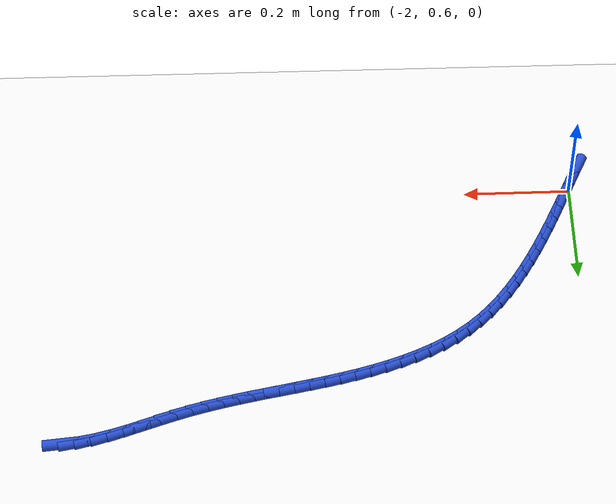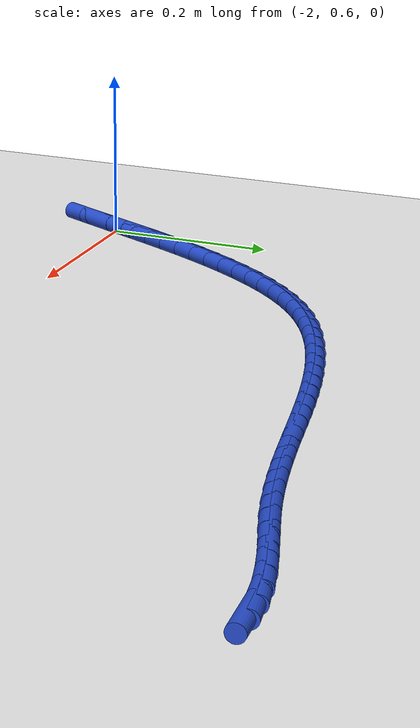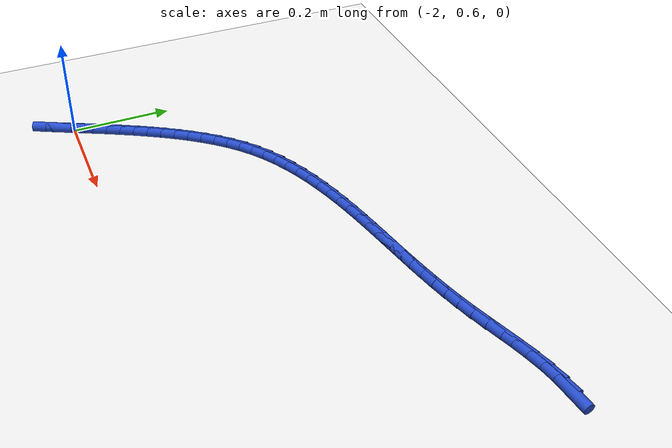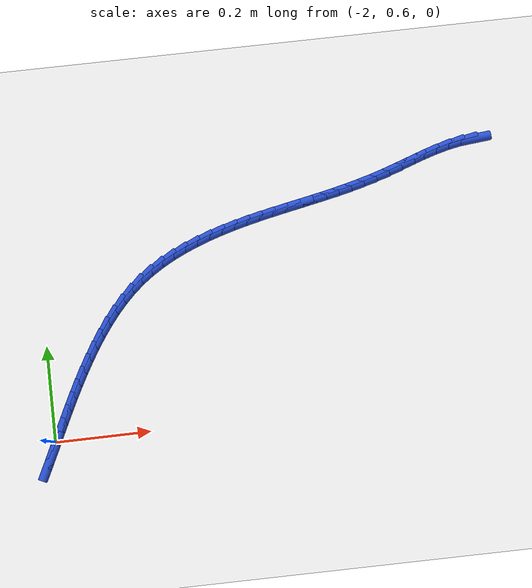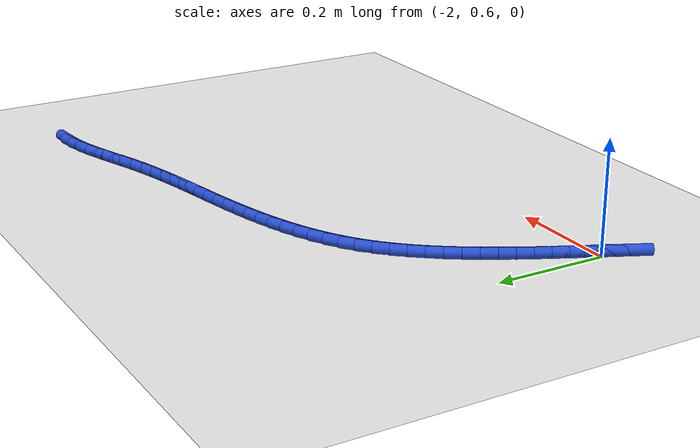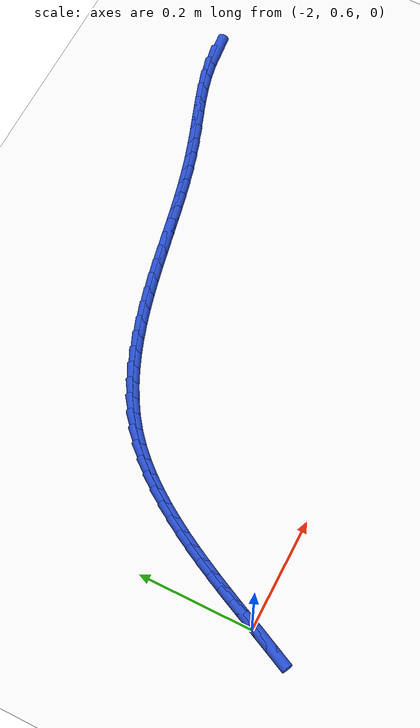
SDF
<sdf version="1.6">
 <world name="default">
  <model name="ground_plane">
   <static>1</static>
   <link name="link">
    <collision name="collision">
     <geometry><plane><normal>0 0 1</normal><size>100 100</size></plane></geometry>
     <surface><friction><ode><mu>100</mu><mu2>50</mu2></ode></friction></surface>
    </collision>
    <visual name="visual">
     <cast_shadows>0</cast_shadows>
     <geometry><plane><normal>0 0 1</normal><size>100 100</size></plane></geometry>
     <material>
      <script><uri>file://media/materials/scripts/gazebo.material</uri><name>Gazebo/WhiteGlow</name></script>
     </material>
    </visual>
   </link>
  </model>
  <model name="line">
   <link name="link_60">
    <pose>-1.060660429085584 1.1414969841542413 0.01 0 1.57 0.10037707467782653</pose>
    <collision name="collision">
     <geometry><cylinder><radius>0.01</radius><length>0.08</length></cylinder></geometry>
    </collision>
    <visual name="visual">
     <material>
      <script><name>Gazebo/Blue</name><uri>file://media/materials/scripts/gazebo.material</uri></script>
     </material>
     <geometry><cylinder><radius>0.01</radius><length>0.08</length></cylinder></geometry>
    </visual>
   </link>
   <link name="link_61">
    <pose>-1.0875630126536087 1.1387874754595328 0.01 0 1.57 0.19267171252004192</pose>
    <collision name="collision">
     <geometry><cylinder><radius>0.01</radius><length>0.08</length></cylinder></geometry>
    </collision>
    <visual name="visual">
     <material>
      <script><name>Gazebo/Blue</name><uri>file://media/materials/scripts/gazebo.material</uri></script>
     </material>
     <geometry><cylinder><radius>0.01</radius><length>0.08</length></cylinder></geometry>
    </visual>
   </link>
   <link name="link_62">
    <pose>-1.1149662834373986 1.1334413220532453 0.01 0 1.57 0.2597573451441378</pose>
    <collision name="collision">
     <geometry><cylinder><radius>0.01</radius><length>0.08</length></cylinder></geometry>
    </collision>
    <visual name="visual">
     <material>
      <script><name>Gazebo/Blue</name><uri>file://media/materials/scripts/gazebo.material</uri></script>
     </material>
     <geometry><cylinder><radius>0.01</radius><length>0.08</length></cylinder></geometry>
    </visual>
   </link>
   <link name="link_63">
    <pose>-1.1427620050209246 1.1260542829550129 0.01 0 1.57 0.3047391400324592</pose>
    <collision name="collision">
     <geometry><cylinder><radius>0.01</radius><length>0.08</length></cylinder></geometry>
    </collision>
    <visual name="visual">
     <material>
      <script><name>Gazebo/Blue</name><uri>file://media/materials/scripts/gazebo.material</uri></script>
     </material>
     <geometry><cylinder><radius>0.01</radius><length>0.08</length></cylinder></geometry>
    </visual>
   </link>
   <link name="link_64">
    <pose>-1.1708419409881587 1.117222117184471 0.01 0 1.57 0.33010072968656384</pose>
    <collision name="collision">
     <geometry><cylinder><radius>0.01</radius><length>0.08</length></cylinder></geometry>
    </collision>
    <visual name="visual">
     <material>
      <script><name>Gazebo/Blue</name><uri>file://media/materials/scripts/gazebo.material</uri></script>
     </material>
     <geometry><cylinder><radius>0.01</radius><length>0.08</length></cylinder></geometry>
    </visual>
   </link>
   <link name="link_65">
    <pose>-1.199097854923071 1.1075405837612529 0.01 0 1.57 0.3373623029033773</pose>
    <collision name="collision">
     <geometry><cylinder><radius>0.01</radius><length>0.08</length></cylinder></geometry>
    </collision>
    <visual name="visual">
     <material>
      <script><name>Gazebo/Blue</name><uri>file://media/materials/scripts/gazebo.material</uri></script>
     </material>
     <geometry><cylinder><radius>0.01</radius><length>0.08</length></cylinder></geometry>
    </visual>
   </link>
   <link name="link_66">
    <pose>-1.2274215104096335 1.0976054417049936 0.01 0 1.57 0.3270004151127906</pose>
    <collision name="collision">
     <geometry><cylinder><radius>0.01</radius><length>0.08</length></cylinder></geometry>
    </collision>
    <visual name="visual">
     <material>
      <script><name>Gazebo/Blue</name><uri>file://media/materials/scripts/gazebo.material</uri></script>
     </material>
     <geometry><cylinder><radius>0.01</radius><length>0.08</length></cylinder></geometry>
    </visual>
   </link>
   <link name="link_67">
    <pose>-1.2557046710318165 1.0880124500353276 0.01 0 1.57 0.3005778866389889</pose>
    <collision name="collision">
     <geometry><cylinder><radius>0.01</radius><length>0.08</length></cylinder></geometry>
    </collision>
    <visual name="visual">
     <material>
      <script><name>Gazebo/Blue</name><uri>file://media/materials/scripts/gazebo.material</uri></script>
     </material>
     <geometry><cylinder><radius>0.01</radius><length>0.08</length></cylinder></geometry>
    </visual>
   </link>
   <link name="link_68">
    <pose>-1.2838501892593501 1.0792881965038106 0.01 0 1.57 0.27201113206563127</pose>
    <collision name="collision">
     <geometry><cylinder><radius>0.01</radius><length>0.08</length></cylinder></geometry>
    </collision>
    <visual name="visual">
     <material>
      <script><name>Gazebo/Blue</name><uri>file://media/materials/scripts/gazebo.material</uri></script>
     </material>
     <geometry><cylinder><radius>0.01</radius><length>0.08</length></cylinder></geometry>
    </visual>
   </link>
   <link name="link_69">
    <pose>-1.3118374507641708 1.071481863037655 0.01 0 1.57 0.24769769130573802</pose>
    <collision name="collision">
     <geometry><cylinder><radius>0.01</radius><length>0.08</length></cylinder></geometry>
    </collision>
    <visual name="visual">
     <material>
      <script><name>Gazebo/Blue</name><uri>file://media/materials/scripts/gazebo.material</uri></script>
     </material>
     <geometry><cylinder><radius>0.01</radius><length>0.08</length></cylinder></geometry>
    </visual>
   </link>
   <link name="link_70">
    <pose>-1.339678131693805 1.0644412070754432 0.01 0 1.57 0.2279727099803743</pose>
    <collision name="collision">
     <geometry><cylinder><radius>0.01</radius><length>0.08</length></cylinder></geometry>
    </collision>
    <visual name="visual">
     <material>
      <script><name>Gazebo/Blue</name><uri>file://media/materials/scripts/gazebo.material</uri></script>
     </material>
     <geometry><cylinder><radius>0.01</radius><length>0.08</length></cylinder></geometry>
    </visual>
   </link>
   <link name="link_71">
    <pose>-1.3673840220418303 1.0580132758964162 0.01 0 1.57 0.21308696646675304</pose>
    <collision name="collision">
     <geometry><cylinder><radius>0.01</radius><length>0.08</length></cylinder></geometry>
    </collision>
    <visual name="visual">
     <material>
      <script><name>Gazebo/Blue</name><uri>file://media/materials/scripts/gazebo.material</uri></script>
     </material>
     <geometry><cylinder><radius>0.01</radius><length>0.08</length></cylinder></geometry>
    </visual>
   </link>
   <link name="link_72">
    <pose>-1.3949669118018269 1.0520451167798177 0.01 0 1.57 0.20323398639800752</pose>
    <collision name="collision">
     <geometry><cylinder><radius>0.01</radius><length>0.08</length></cylinder></geometry>
    </collision>
    <visual name="visual">
     <material>
      <script><name>Gazebo/Blue</name><uri>file://media/materials/scripts/gazebo.material</uri></script>
     </material>
     <geometry><cylinder><radius>0.01</radius><length>0.08</length></cylinder></geometry>
    </visual>
   </link>
   <link name="link_73">
    <pose>-1.4224385909673714 1.0463837770048878 0.01 0 1.57 0.19855527441415055</pose>
    <collision name="collision">
     <geometry><cylinder><radius>0.01</radius><length>0.08</length></cylinder></geometry>
    </collision>
    <visual name="visual">
     <material>
      <script><name>Gazebo/Blue</name><uri>file://media/materials/scripts/gazebo.material</uri></script>
     </material>
     <geometry><cylinder><radius>0.01</radius><length>0.08</length></cylinder></geometry>
    </visual>
   </link>
   <link name="link_74">
    <pose>-1.4498108495320434 1.0408763038508693 0.01 0 1.57 0.19914408789378646</pose>
    <collision name="collision">
     <geometry><cylinder><radius>0.01</radius><length>0.08</length></cylinder></geometry>
    </collision>
    <visual name="visual">
     <material>
      <script><name>Gazebo/Blue</name><uri>file://media/materials/scripts/gazebo.material</uri></script>
     </material>
     <geometry><cylinder><radius>0.01</radius><length>0.08</length></cylinder></geometry>
    </visual>
   </link>
   <link name="link_75">
    <pose>-1.4770954774894223 1.0353697445970038 0.01 0 1.57 0.20504667120053235</pose>
    <collision name="collision">
     <geometry><cylinder><radius>0.01</radius><length>0.08</length></cylinder></geometry>
    </collision>
    <visual name="visual">
     <material>
      <script><name>Gazebo/Blue</name><uri>file://media/materials/scripts/gazebo.material</uri></script>
     </material>
     <geometry><cylinder><radius>0.01</radius><length>0.08</length></cylinder></geometry>
    </visual>
   </link>
   <link name="link_76">
    <pose>-1.504304264833086 1.0297111465225335 0.01 0 1.57 0.21626030453882042</pose>
    <collision name="collision">
     <geometry><cylinder><radius>0.01</radius><length>0.08</length></cylinder></geometry>
    </collision>
    <visual name="visual">
     <material>
      <script><name>Gazebo/Blue</name><uri>file://media/materials/scripts/gazebo.material</uri></script>
     </material>
     <geometry><cylinder><radius>0.01</radius><length>0.08</length></cylinder></geometry>
    </visual>
   </link>
   <link name="link_77">
    <pose>-1.5314490015566122 1.0237475569066996 0.01 0 1.57 0.2327280087937068</pose>
    <collision name="collision">
     <geometry><cylinder><radius>0.01</radius><length>0.08</length></cylinder></geometry>
    </collision>
    <visual name="visual">
     <material>
      <script><name>Gazebo/Blue</name><uri>file://media/materials/scripts/gazebo.material</uri></script>
     </material>
     <geometry><cylinder><radius>0.01</radius><length>0.08</length></cylinder></geometry>
    </visual>
   </link>
   <link name="link_78">
    <pose>-1.5585414776535809 1.0173260230287444 0.01 0 1.57 0.2543302973593069</pose>
    <collision name="collision">
     <geometry><cylinder><radius>0.01</radius><length>0.08</length></cylinder></geometry>
    </collision>
    <visual name="visual">
     <material>
      <script><name>Gazebo/Blue</name><uri>file://media/materials/scripts/gazebo.material</uri></script>
     </material>
     <geometry><cylinder><radius>0.01</radius><length>0.08</length></cylinder></geometry>
    </visual>
   </link>
   <link name="link_79">
    <pose>-1.5855934831175695 1.0102935921679095 0.01 0 1.57 0.28087498554764667</pose>
    <collision name="collision">
     <geometry><cylinder><radius>0.01</radius><length>0.08</length></cylinder></geometry>
    </collision>
    <visual name="visual">
     <material>
      <script><name>Gazebo/Blue</name><uri>file://media/materials/scripts/gazebo.material</uri></script>
     </material>
     <geometry><cylinder><radius>0.01</radius><length>0.08</length></cylinder></geometry>
    </visual>
   </link>
   <link name="link_80">
    <pose>-1.6126168079421572 1.0024973116034372 0.01 0 1.57 0.3122426797753947</pose>
    <collision name="collision">
     <geometry><cylinder><radius>0.01</radius><length>0.08</length></cylinder></geometry>
    </collision>
    <visual name="visual">
     <material>
      <script><name>Gazebo/Blue</name><uri>file://media/materials/scripts/gazebo.material</uri></script>
     </material>
     <geometry><cylinder><radius>0.01</radius><length>0.08</length></cylinder></geometry>
    </visual>
   </link>
   <link name="link_81">
    <pose>-1.639595160303173 0.9937886431454803 0.01 0 1.57 0.34915072345688863</pose>
    <collision name="collision">
     <geometry><cylinder><radius>0.01</radius><length>0.08</length></cylinder></geometry>
    </collision>
    <visual name="visual">
     <material>
      <script><name>Gazebo/Blue</name><uri>file://media/materials/scripts/gazebo.material</uri></script>
     </material>
     <geometry><cylinder><radius>0.01</radius><length>0.08</length></cylinder></geometry>
    </visual>
   </link>
   <link name="link_82">
    <pose>-1.6663671695606455 0.9840418553513376 0.01 0 1.57 0.3922335474188446</pose>
    <collision name="collision">
     <geometry><cylinder><radius>0.01</radius><length>0.08</length></cylinder></geometry>
    </collision>
    <visual name="visual">
     <material>
      <script><name>Gazebo/Blue</name><uri>file://media/materials/scripts/gazebo.material</uri></script>
     </material>
     <geometry><cylinder><radius>0.01</radius><length>0.08</length></cylinder></geometry>
    </visual>
   </link>
   <link name="link_83">
    <pose>-1.6927247515836117 0.97313856025414 0.01 0 1.57 0.4419901675397512</pose>
    <collision name="collision">
     <geometry><cylinder><radius>0.01</radius><length>0.08</length></cylinder></geometry>
    </collision>
    <visual name="visual">
     <material>
      <script><name>Gazebo/Blue</name><uri>file://media/materials/scripts/gazebo.material</uri></script>
     </material>
     <geometry><cylinder><radius>0.01</radius><length>0.08</length></cylinder></geometry>
    </visual>
   </link>
   <link name="link_84">
    <pose>-1.7184597997865754 0.9609603734169256 0.01 0 1.57 0.4989517790778436</pose>
    <collision name="collision">
     <geometry><cylinder><radius>0.01</radius><length>0.08</length></cylinder></geometry>
    </collision>
    <visual name="visual">
     <material>
      <script><name>Gazebo/Blue</name><uri>file://media/materials/scripts/gazebo.material</uri></script>
     </material>
     <geometry><cylinder><radius>0.01</radius><length>0.08</length></cylinder></geometry>
    </visual>
   </link>
   <link name="link_85">
    <pose>-1.743364207584042 0.9473889104027328 0.01 0 1.57 0.563617972813412</pose>
    <collision name="collision">
     <geometry><cylinder><radius>0.01</radius><length>0.08</length></cylinder></geometry>
    </collision>
    <visual name="visual">
     <material>
      <script><name>Gazebo/Blue</name><uri>file://media/materials/scripts/gazebo.material</uri></script>
     </material>
     <geometry><cylinder><radius>0.01</radius><length>0.08</length></cylinder></geometry>
    </visual>
   </link>
   <link name="link_86">
    <pose>-1.7672298683905145 0.9323057867745993 0.01 0 1.57 0.6363607128908866</pose>
    <collision name="collision">
     <geometry><cylinder><radius>0.01</radius><length>0.08</length></cylinder></geometry>
    </collision>
    <visual name="visual">
     <material>
      <script><name>Gazebo/Blue</name><uri>file://media/materials/scripts/gazebo.material</uri></script>
     </material>
     <geometry><cylinder><radius>0.01</radius><length>0.08</length></cylinder></geometry>
    </visual>
   </link>
   <link name="link_87">
    <pose>-1.7898487197560158 0.9155926638061955 0.01 0 1.57 0.7138617305378235</pose>
    <collision name="collision">
     <geometry><cylinder><radius>0.01</radius><length>0.08</length></cylinder></geometry>
    </collision>
    <visual name="visual">
     <material>
      <script><name>Gazebo/Blue</name><uri>file://media/materials/scripts/gazebo.material</uri></script>
     </material>
     <geometry><cylinder><radius>0.01</radius><length>0.08</length></cylinder></geometry>
    </visual>
   </link>
   <link name="link_88">
    <pose>-1.8110799087837208 0.8972008109076568 0.01 0 1.57 0.7855044198799838</pose>
    <collision name="collision">
     <geometry><cylinder><radius>0.01</radius><length>0.08</length></cylinder></geometry>
    </collision>
    <visual name="visual">
     <material>
      <script><name>Gazebo/Blue</name><uri>file://media/materials/scripts/gazebo.material</uri></script>
     </material>
     <geometry><cylinder><radius>0.01</radius><length>0.08</length></cylinder></geometry>
    </visual>
   </link>
   <link name="link_89">
    <pose>-1.8309851720811545 0.8772913170341572 0.01 0 1.57 0.8491514623641381</pose>
    <collision name="collision">
     <geometry><cylinder><radius>0.01</radius><length>0.08</length></cylinder></geometry>
    </collision>
    <visual name="visual">
     <material>
      <script><name>Gazebo/Blue</name><uri>file://media/materials/scripts/gazebo.material</uri></script>
     </material>
     <geometry><cylinder><radius>0.01</radius><length>0.08</length></cylinder></geometry>
    </visual>
   </link>
   <link name="link_90">
    <pose>-1.8496642654399171 0.8560646471585555 0.01 0 1.57 0.904905527890935</pose>
    <collision name="collision">
     <geometry><cylinder><radius>0.01</radius><length>0.08</length></cylinder></geometry>
    </collision>
    <visual name="visual">
     <material>
      <script><name>Gazebo/Blue</name><uri>file://media/materials/scripts/gazebo.material</uri></script>
     </material>
     <geometry><cylinder><radius>0.01</radius><length>0.08</length></cylinder></geometry>
    </visual>
   </link>
   <link name="link_91">
    <pose>-1.8672169446516105 0.8337212662537108 0.01 0 1.57 0.9530564917022778</pose>
    <collision name="collision">
     <geometry><cylinder><radius>0.01</radius><length>0.08</length></cylinder></geometry>
    </collision>
    <visual name="visual">
     <material>
      <script><name>Gazebo/Blue</name><uri>file://media/materials/scripts/gazebo.material</uri></script>
     </material>
     <geometry><cylinder><radius>0.01</radius><length>0.08</length></cylinder></geometry>
    </visual>
   </link>
   <link name="link_92">
    <pose>-1.8837429655078357 0.8104616392924819 0.01 0 1.57 0.9939783937500359</pose>
    <collision name="collision">
     <geometry><cylinder><radius>0.01</radius><length>0.08</length></cylinder></geometry>
    </collision>
    <visual name="visual">
     <material>
      <script><name>Gazebo/Blue</name><uri>file://media/materials/scripts/gazebo.material</uri></script>
     </material>
     <geometry><cylinder><radius>0.01</radius><length>0.08</length></cylinder></geometry>
    </visual>
   </link>
   <link name="link_93">
    <pose>-1.8993420838001935 0.7864862312477275 0.01 0 1.57 1.0280541290480876</pose>
    <collision name="collision">
     <geometry><cylinder><radius>0.01</radius><length>0.08</length></cylinder></geometry>
    </collision>
    <visual name="visual">
     <material>
      <script><name>Gazebo/Blue</name><uri>file://media/materials/scripts/gazebo.material</uri></script>
     </material>
     <geometry><cylinder><radius>0.01</radius><length>0.08</length></cylinder></geometry>
    </visual>
   </link>
   <link name="link_94">
    <pose>-1.9141140614398982 0.7619953876167522 0.01 0 1.57 1.0561872339718896</pose>
    <collision name="collision">
     <geometry><cylinder><radius>0.01</radius><length>0.08</length></cylinder></geometry>
    </collision>
    <visual name="visual">
     <material>
      <script><name>Gazebo/Blue</name><uri>file://media/materials/scripts/gazebo.material</uri></script>
     </material>
     <geometry><cylinder><radius>0.01</radius><length>0.08</length></cylinder></geometry>
    </visual>
   </link>
   <link name="link_95">
    <pose>-1.9281605219783573 0.7371531083733968 0.01 0 1.57 1.0798696321446573</pose>
    <collision name="collision">
     <geometry><cylinder><radius>0.01</radius><length>0.08</length></cylinder></geometry>
    </collision>
    <visual name="visual">
     <material>
      <script><name>Gazebo/Blue</name><uri>file://media/materials/scripts/gazebo.material</uri></script>
     </material>
     <geometry><cylinder><radius>0.01</radius><length>0.08</length></cylinder></geometry>
    </visual>
   </link>
   <link name="link_96">
    <pose>-1.9415875613641878 0.7120360771465155 0.01 0 1.57 1.099270968803575</pose>
    <collision name="collision">
     <geometry><cylinder><radius>0.01</radius><length>0.08</length></cylinder></geometry>
    </collision>
    <visual name="visual">
     <material>
      <script><name>Gazebo/Blue</name><uri>file://media/materials/scripts/gazebo.material</uri></script>
     </material>
     <geometry><cylinder><radius>0.01</radius><length>0.08</length></cylinder></geometry>
    </visual>
   </link>
   <link name="link_97">
    <pose>-1.9545019334030098 0.6867081339675486 0.01 0 1.57 1.114367454907676</pose>
    <collision name="collision">
     <geometry><cylinder><radius>0.01</radius><length>0.08</length></cylinder></geometry>
    </collision>
    <visual name="visual">
     <material>
      <script><name>Gazebo/Blue</name><uri>file://media/materials/scripts/gazebo.material</uri></script>
     </material>
     <geometry><cylinder><radius>0.01</radius><length>0.08</length></cylinder></geometry>
    </visual>
   </link>
   <link name="link_98">
    <pose>-1.9670103919004442 0.6612331188679361 0.01 0 1.57 1.1251433832271764</pose>
    <collision name="collision">
     <geometry><cylinder><radius>0.01</radius><length>0.08</length></cylinder></geometry>
    </collision>
    <visual name="visual">
     <material>
      <script><name>Gazebo/Blue</name><uri>file://media/materials/scripts/gazebo.material</uri></script>
     </material>
     <geometry><cylinder><radius>0.01</radius><length>0.08</length></cylinder></geometry>
    </visual>
   </link>
   <link name="link_99">
    <pose>-1.9792196906621116 0.6356748718791186 0.01 0 1.57 1.1315826722138764</pose>
    <collision name="collision">
     <geometry><cylinder><radius>0.01</radius><length>0.08</length></cylinder></geometry>
    </collision>
    <visual name="visual">
     <material>
      <script><name>Gazebo/Blue</name><uri>file://media/materials/scripts/gazebo.material</uri></script>
     </material>
     <geometry><cylinder><radius>0.01</radius><length>0.08</length></cylinder></geometry>
    </visual>
   </link>
   <link name="link_100">
    <pose>-1.9912365834936323 0.6100972330325362 0.01 0 1.57 1.1336626986108702</pose>
    <collision name="collision">
     <geometry><cylinder><radius>0.01</radius><length>0.08</length></cylinder></geometry>
    </collision>
    <visual name="visual">
     <material>
      <script><name>Gazebo/Blue</name><uri>file://media/materials/scripts/gazebo.material</uri></script>
     </material>
     <geometry><cylinder><radius>0.01</radius><length>0.08</length></cylinder></geometry>
    </visual>
   </link>
   <link name="link_101">
    <pose>-2.0031678242006272 0.5845640423596291 0.01 0 1.57 1.1313504518986628</pose>
    <collision name="collision">
     <geometry><cylinder><radius>0.01</radius><length>0.08</length></cylinder></geometry>
    </collision>
    <visual name="visual">
     <material>
      <script><name>Gazebo/Blue</name><uri>file://media/materials/scripts/gazebo.material</uri></script>
     </material>
     <geometry><cylinder><radius>0.01</radius><length>0.08</length></cylinder></geometry>
    </visual>
   </link>
   <link name="link_102">
    <pose>-2.015120166588718 0.5591391398918379 0.01 0 1.57 1.1246010553671206</pose>
    <collision name="collision">
     <geometry><cylinder><radius>0.01</radius><length>0.08</length></cylinder></geometry>
    </collision>
    <visual name="visual">
     <material>
      <script><name>Gazebo/Blue</name><uri>file://media/materials/scripts/gazebo.material</uri></script>
     </material>
     <geometry><cylinder><radius>0.01</radius><length>0.08</length></cylinder></geometry>
    </visual>
   </link>
  </model>
 </world>
</sdf>
